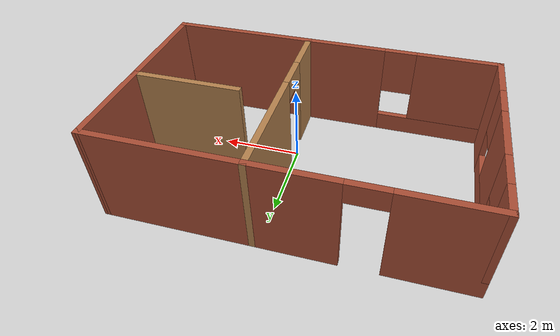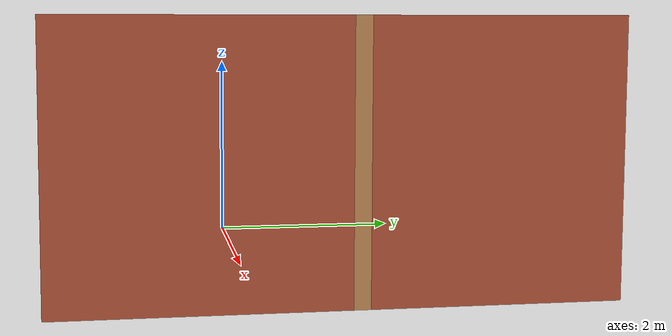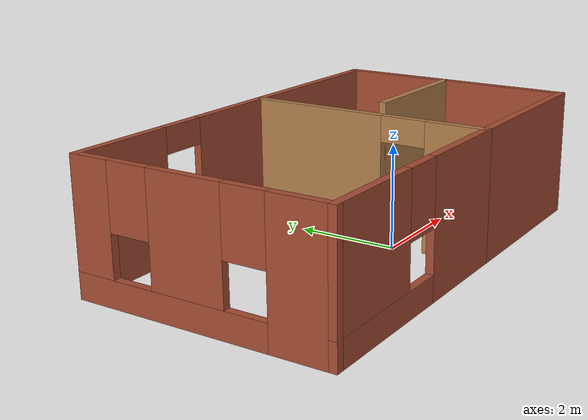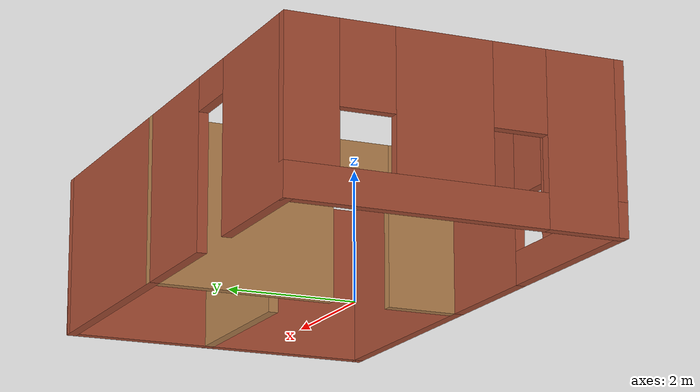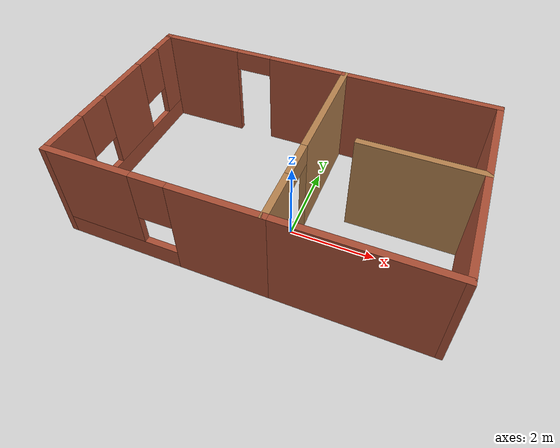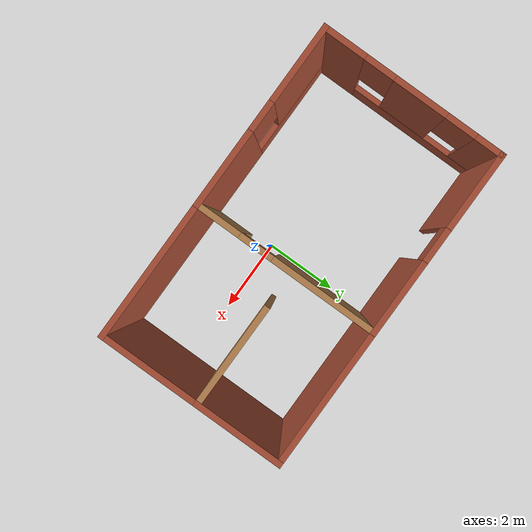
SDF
<?xml version='1.0'?>
<sdf version='1.6'>
  <model name='entertrainer_house'>
    <pose frame=''>-0.485 0.675 0 0 -0 0</pose>
    <link name='Wall_0'>
      <pose frame=''>-1.8 -2.425 0 0 -0 3.14159</pose>
      <visual name='Wall_0_Visual_0'>
        <pose frame=''>-1.44823 0 1.25 0 -0 0</pose>
        <geometry>
          <box>
            <size>2.10353 0.15 2.5</size>
          </box>
        </geometry>
        <material>
          <script>
            <uri>file://media/materials/scripts/gazebo.material</uri>
            <name>Gazebo/Bricks</name>
          </script>
          <ambient>1 1 1 1</ambient>
        </material>
        <meta>
          <layer>0</layer>
        </meta>
      </visual>
      <collision name='Wall_0_Collision_0'>
        <geometry>
          <box>
            <size>2.10353 0.15 2.5</size>
          </box>
        </geometry>
        <pose frame=''>-1.44823 0 1.25 0 -0 0</pose>
      </collision>
      <visual name='Wall_0_Visual_1'>
        <pose frame=''>1.05177 0 0.25 0 -0 0</pose>
        <geometry>
          <box>
            <size>2.89647 0.15 0.5</size>
          </box>
        </geometry>
        <material>
          <script>
            <uri>file://media/materials/scripts/gazebo.material</uri>
            <name>Gazebo/Bricks</name>
          </script>
          <ambient>1 1 1 1</ambient>
        </material>
        <meta>
          <layer>0</layer>
        </meta>
      </visual>
      <collision name='Wall_0_Collision_1'>
        <geometry>
          <box>
            <size>2.89647 0.15 0.5</size>
          </box>
        </geometry>
        <pose frame=''>1.05177 0 0.25 0 -0 0</pose>
      </collision>
      <visual name='Wall_0_Visual_2'>
        <pose frame=''>1.45177 0 1.5 0 -0 0</pose>
        <geometry>
          <box>
            <size>2.09646 0.15 2</size>
          </box>
        </geometry>
        <material>
          <script>
            <uri>file://media/materials/scripts/gazebo.material</uri>
            <name>Gazebo/Bricks</name>
          </script>
          <ambient>1 1 1 1</ambient>
        </material>
        <meta>
          <layer>0</layer>
        </meta>
      </visual>
      <collision name='Wall_0_Collision_2'>
        <geometry>
          <box>
            <size>2.09646 0.15 2</size>
          </box>
        </geometry>
        <pose frame=''>1.45177 0 1.5 0 -0 0</pose>
      </collision>
      <visual name='Wall_0_Visual_3'>
        <pose frame=''>0.003535 0 1.9 0 -0 0</pose>
        <geometry>
          <box>
            <size>0.8 0.15 1.2</size>
          </box>
        </geometry>
        <material>
          <script>
            <uri>file://media/materials/scripts/gazebo.material</uri>
            <name>Gazebo/Bricks</name>
          </script>
          <ambient>1 1 1 1</ambient>
        </material>
        <meta>
          <layer>0</layer>
        </meta>
      </visual>
      <collision name='Wall_0_Collision_3'>
        <geometry>
          <box>
            <size>0.8 0.15 1.2</size>
          </box>
        </geometry>
        <pose frame=''>0.003535 0 1.9 0 -0 0</pose>
      </collision>
    </link>
    <link name='Wall_1'>
      <pose frame=''>-4.225 0 0 0 -0 1.5708</pose>
      <visual name='Wall_1_Visual_0'>
        <pose frame=''>-1.90279 0 1.25 0 -0 0</pose>
        <geometry>
          <box>
            <size>1.19442 0.15 2.5</size>
          </box>
        </geometry>
        <material>
          <script>
            <uri>file://media/materials/scripts/gazebo.material</uri>
            <name>Gazebo/Bricks</name>
          </script>
          <ambient>1 1 1 1</ambient>
        </material>
        <meta>
          <layer>0</layer>
        </meta>
      </visual>
      <collision name='Wall_1_Collision_0'>
        <geometry>
          <box>
            <size>1.19442 0.15 2.5</size>
          </box>
        </geometry>
        <pose frame=''>-1.90279 0 1.25 0 -0 0</pose>
      </collision>
      <visual name='Wall_1_Visual_1'>
        <pose frame=''>0.597208 0 0.25 0 -0 0</pose>
        <geometry>
          <box>
            <size>3.80558 0.15 0.5</size>
          </box>
        </geometry>
        <material>
          <script>
            <uri>file://media/materials/scripts/gazebo.material</uri>
            <name>Gazebo/Bricks</name>
          </script>
          <ambient>1 1 1 1</ambient>
        </material>
        <meta>
          <layer>0</layer>
        </meta>
      </visual>
      <collision name='Wall_1_Collision_1'>
        <geometry>
          <box>
            <size>3.80558 0.15 0.5</size>
          </box>
        </geometry>
        <pose frame=''>0.597208 0 0.25 0 -0 0</pose>
      </collision>
      <visual name='Wall_1_Visual_2'>
        <pose frame=''>0.204686 0 1.5 0 -0 0</pose>
        <geometry>
          <box>
            <size>1.42054 0.15 2</size>
          </box>
        </geometry>
        <material>
          <script>
            <uri>file://media/materials/scripts/gazebo.material</uri>
            <name>Gazebo/Bricks</name>
          </script>
          <ambient>1 1 1 1</ambient>
        </material>
        <meta>
          <layer>0</layer>
        </meta>
      </visual>
      <collision name='Wall_1_Collision_2'>
        <geometry>
          <box>
            <size>1.42054 0.15 2</size>
          </box>
        </geometry>
        <pose frame=''>0.204686 0 1.5 0 -0 0</pose>
      </collision>
      <visual name='Wall_1_Visual_3'>
        <pose frame=''>2.10748 0 1.5 0 -0 0</pose>
        <geometry>
          <box>
            <size>0.785045 0.15 2</size>
          </box>
        </geometry>
        <material>
          <script>
            <uri>file://media/materials/scripts/gazebo.material</uri>
            <name>Gazebo/Bricks</name>
          </script>
          <ambient>1 1 1 1</ambient>
        </material>
        <meta>
          <layer>0</layer>
        </meta>
      </visual>
      <collision name='Wall_1_Collision_3'>
        <geometry>
          <box>
            <size>0.785045 0.15 2</size>
          </box>
        </geometry>
        <pose frame=''>2.10748 0 1.5 0 -0 0</pose>
      </collision>
      <visual name='Wall_1_Visual_4'>
        <pose frame=''>-0.905583 0 1.9 0 -0 0</pose>
        <geometry>
          <box>
            <size>0.8 0.15 1.2</size>
          </box>
        </geometry>
        <material>
          <script>
            <uri>file://media/materials/scripts/gazebo.material</uri>
            <name>Gazebo/Bricks</name>
          </script>
          <ambient>1 1 1 1</ambient>
        </material>
        <meta>
          <layer>0</layer>
        </meta>
      </visual>
      <collision name='Wall_1_Collision_4'>
        <geometry>
          <box>
            <size>0.8 0.15 1.2</size>
          </box>
        </geometry>
        <pose frame=''>-0.905583 0 1.9 0 -0 0</pose>
      </collision>
      <visual name='Wall_1_Visual_5'>
        <pose frame=''>1.31496 0 1.9 0 -0 0</pose>
        <geometry>
          <box>
            <size>0.8 0.15 1.2</size>
          </box>
        </geometry>
        <material>
          <script>
            <uri>file://media/materials/scripts/gazebo.material</uri>
            <name>Gazebo/Bricks</name>
          </script>
          <ambient>1 1 1 1</ambient>
        </material>
        <meta>
          <layer>0</layer>
        </meta>
      </visual>
      <collision name='Wall_1_Collision_5'>
        <geometry>
          <box>
            <size>0.8 0.15 1.2</size>
          </box>
        </geometry>
        <pose frame=''>1.31496 0 1.9 0 -0 0</pose>
      </collision>
    </link>
    <link name='Wall_10'>
      <collision name='Wall_10_Collision'>
        <geometry>
          <box>
            <size>2.4 0.15 2.5</size>
          </box>
        </geometry>
        <pose frame=''>0 0 1.25 0 -0 0</pose>
      </collision>
      <visual name='Wall_10_Visual'>
        <pose frame=''>0 0 1.25 0 -0 0</pose>
        <geometry>
          <box>
            <size>2.4 0.15 2.5</size>
          </box>
        </geometry>
        <material>
          <script>
            <uri>file://media/materials/scripts/gazebo.material</uri>
            <name>Gazebo/Bricks</name>
          </script>
          <ambient>1 1 1 1</ambient>
        </material>
        <meta>
          <layer>0</layer>
        </meta>
      </visual>
      <pose frame=''>4.225 1.3 0 0 -0 -1.5708</pose>
    </link>
    <link name='Wall_2'>
      <pose frame=''>-1.8 2.425 0 0 -0 0</pose>
      <visual name='Wall_2_Visual_0'>
        <pose frame=''>-1.45364 0 1.25 0 -0 0</pose>
        <geometry>
          <box>
            <size>2.09273 0.15 2.5</size>
          </box>
        </geometry>
        <material>
          <script>
            <uri>file://media/materials/scripts/gazebo.material</uri>
            <name>Gazebo/Bricks</name>
          </script>
          <ambient>1 1 1 1</ambient>
        </material>
        <meta>
          <layer>0</layer>
        </meta>
      </visual>
      <collision name='Wall_2_Collision_0'>
        <geometry>
          <box>
            <size>2.09273 0.15 2.5</size>
          </box>
        </geometry>
        <pose frame=''>-1.45364 0 1.25 0 -0 0</pose>
      </collision>
      <visual name='Wall_2_Visual_1'>
        <pose frame=''>1.49636 0 1.25 0 -0 0</pose>
        <geometry>
          <box>
            <size>2.00727 0.15 2.5</size>
          </box>
        </geometry>
        <material>
          <script>
            <uri>file://media/materials/scripts/gazebo.material</uri>
            <name>Gazebo/Bricks</name>
          </script>
          <ambient>1 1 1 1</ambient>
        </material>
        <meta>
          <layer>0</layer>
        </meta>
      </visual>
      <collision name='Wall_2_Collision_1'>
        <geometry>
          <box>
            <size>2.00727 0.15 2.5</size>
          </box>
        </geometry>
        <pose frame=''>1.49636 0 1.25 0 -0 0</pose>
      </collision>
      <visual name='Wall_2_Visual_2'>
        <pose frame=''>0.042727 0 2.25 0 -0 0</pose>
        <geometry>
          <box>
            <size>0.9 0.15 0.5</size>
          </box>
        </geometry>
        <material>
          <script>
            <uri>file://media/materials/scripts/gazebo.material</uri>
            <name>Gazebo/Bricks</name>
          </script>
          <ambient>1 1 1 1</ambient>
        </material>
        <meta>
          <layer>0</layer>
        </meta>
      </visual>
      <collision name='Wall_2_Collision_2'>
        <geometry>
          <box>
            <size>0.9 0.15 0.5</size>
          </box>
        </geometry>
        <pose frame=''>0.042727 0 2.25 0 -0 0</pose>
      </collision>
    </link>
    <link name='Wall_3'>
      <pose frame=''>0.625 0 0 0 -0 -1.5708</pose>
      <visual name='Wall_3_Visual_0'>
        <pose frame=''>-1.06734 0 1.25 0 -0 0</pose>
        <geometry>
          <box>
            <size>2.86533 0.15 2.5</size>
          </box>
        </geometry>
        <material>
          <script>
            <uri>file://media/materials/scripts/gazebo.material</uri>
            <name>Gazebo/Wood</name>
          </script>
          <ambient>1 1 1 1</ambient>
        </material>
        <meta>
          <layer>0</layer>
        </meta>
      </visual>
      <collision name='Wall_3_Collision_0'>
        <geometry>
          <box>
            <size>2.86533 0.15 2.5</size>
          </box>
        </geometry>
        <pose frame=''>-1.06734 0 1.25 0 -0 0</pose>
      </collision>
      <visual name='Wall_3_Visual_1'>
        <pose frame=''>1.88266 0 1.25 0 -0 0</pose>
        <geometry>
          <box>
            <size>1.23467 0.15 2.5</size>
          </box>
        </geometry>
        <material>
          <script>
            <uri>file://media/materials/scripts/gazebo.material</uri>
            <name>Gazebo/Wood</name>
          </script>
          <ambient>1 1 1 1</ambient>
        </material>
        <meta>
          <layer>0</layer>
        </meta>
      </visual>
      <collision name='Wall_3_Collision_1'>
        <geometry>
          <box>
            <size>1.23467 0.15 2.5</size>
          </box>
        </geometry>
        <pose frame=''>1.88266 0 1.25 0 -0 0</pose>
      </collision>
      <visual name='Wall_3_Visual_2'>
        <pose frame=''>0.815326 0 2.25 0 -0 0</pose>
        <geometry>
          <box>
            <size>0.9 0.15 0.5</size>
          </box>
        </geometry>
        <material>
          <script>
            <uri>file://media/materials/scripts/gazebo.material</uri>
            <name>Gazebo/Wood</name>
          </script>
          <ambient>1 1 1 1</ambient>
        </material>
        <meta>
          <layer>0</layer>
        </meta>
      </visual>
      <collision name='Wall_3_Collision_2'>
        <geometry>
          <box>
            <size>0.9 0.15 0.5</size>
          </box>
        </geometry>
        <pose frame=''>0.815326 0 2.25 0 -0 0</pose>
      </collision>
    </link>
    <link name='Wall_5'>
      <collision name='Wall_5_Collision'>
        <geometry>
          <box>
            <size>3.75 0.15 2.5</size>
          </box>
        </geometry>
        <pose frame=''>0 0 1.25 0 -0 0</pose>
      </collision>
      <visual name='Wall_5_Visual'>
        <pose frame=''>0 0 1.25 0 -0 0</pose>
        <geometry>
          <box>
            <size>3.75 0.15 2.5</size>
          </box>
        </geometry>
        <material>
          <script>
            <uri>file://media/materials/scripts/gazebo.material</uri>
            <name>Gazebo/Bricks</name>
          </script>
          <ambient>1 1 1 1</ambient>
        </material>
        <meta>
          <layer>0</layer>
        </meta>
      </visual>
      <pose frame=''>2.425 -2.425 0 0 -0 0</pose>
    </link>
    <link name='Wall_6'>
      <collision name='Wall_6_Collision'>
        <geometry>
          <box>
            <size>2.75 0.15 2.5</size>
          </box>
        </geometry>
        <pose frame=''>0 0 1.25 0 -0 0</pose>
      </collision>
      <visual name='Wall_6_Visual'>
        <pose frame=''>0 0 1.25 0 -0 0</pose>
        <geometry>
          <box>
            <size>2.75 0.15 2.5</size>
          </box>
        </geometry>
        <material>
          <script>
            <uri>file://media/materials/scripts/gazebo.material</uri>
            <name>Gazebo/Bricks</name>
          </script>
          <ambient>1 1 1 1</ambient>
        </material>
        <meta>
          <layer>0</layer>
        </meta>
      </visual>
      <pose frame=''>4.225 -1.125 0 0 -0 1.5708</pose>
    </link>
    <link name='Wall_7'>
      <collision name='Wall_7_Collision'>
        <geometry>
          <box>
            <size>2.75 0.15 2.5</size>
          </box>
        </geometry>
        <pose frame=''>0 0 1.25 0 -0 0</pose>
      </collision>
      <visual name='Wall_7_Visual'>
        <pose frame=''>0 0 1.25 0 -0 0</pose>
        <geometry>
          <box>
            <size>2.75 0.15 2.5</size>
          </box>
        </geometry>
        <material>
          <script>
            <uri>file://media/materials/scripts/gazebo.material</uri>
            <name>Gazebo/Wood</name>
          </script>
          <ambient>1 1 1 1</ambient>
        </material>
        <meta>
          <layer>0</layer>
        </meta>
      </visual>
      <pose frame=''>2.925 0.175 0 0 -0 3.14159</pose>
    </link>
    <link name='Wall_9'>
      <collision name='Wall_9_Collision'>
        <geometry>
          <box>
            <size>3.75 0.15 2.5</size>
          </box>
        </geometry>
        <pose frame=''>0 0 1.25 0 -0 0</pose>
      </collision>
      <visual name='Wall_9_Visual'>
        <pose frame=''>0 0 1.25 0 -0 0</pose>
        <geometry>
          <box>
            <size>3.75 0.15 2.5</size>
          </box>
        </geometry>
        <material>
          <script>
            <uri>file://media/materials/scripts/gazebo.material</uri>
            <name>Gazebo/Bricks</name>
          </script>
          <ambient>1 1 1 1</ambient>
        </material>
        <meta>
          <layer>0</layer>
        </meta>
      </visual>
      <pose frame=''>2.425 2.425 0 0 -0 0</pose>
    </link>
    <static>1</static>
  </model>
</sdf>
